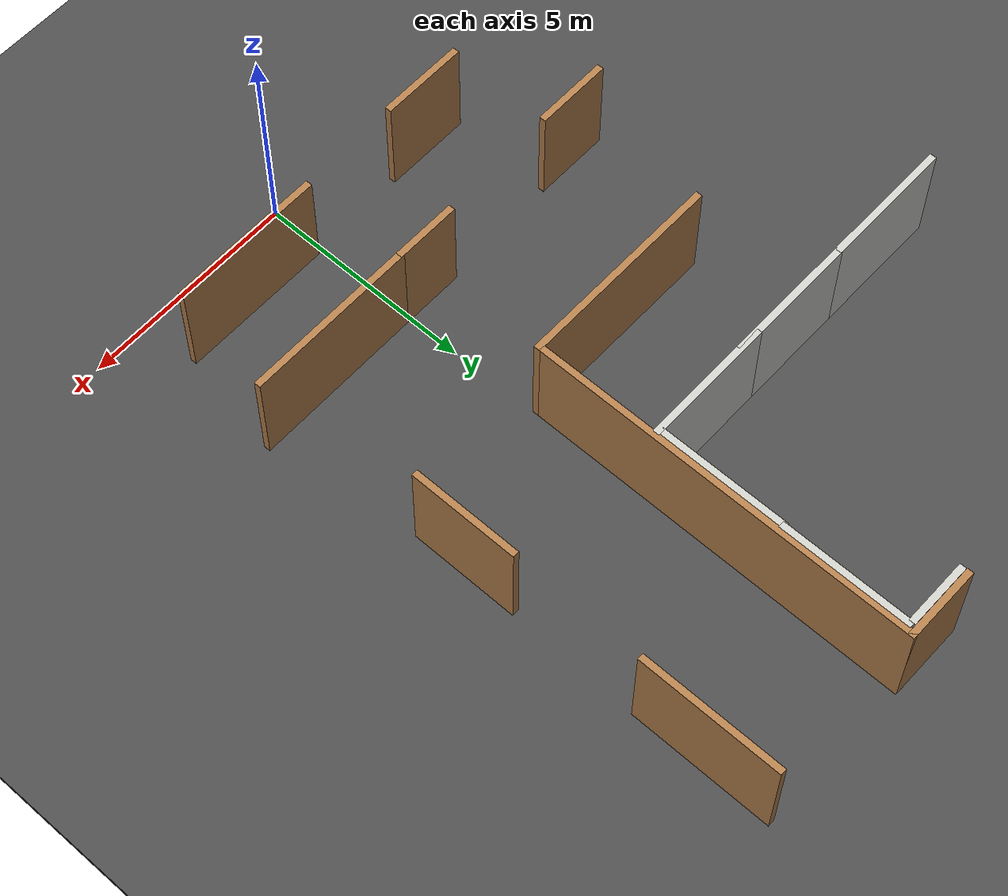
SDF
<sdf version="1.6">
 <world name="default">
  <model name="ground_plane">
   <static>1</static>
   <link name="link">
    <collision name="collision">
     <geometry><plane><normal>0 0 1</normal><size>100 100</size></plane></geometry>
     <surface><friction><ode><mu>100</mu><mu2>50</mu2></ode></friction></surface>
    </collision>
    <visual name="visual">
     <cast_shadows>0</cast_shadows>
     <geometry><plane><normal>0 0 1</normal><size>100 100</size></plane></geometry>
     <material>
      <script><uri>file://media/materials/scripts/gazebo.material</uri><name>Gazebo/Grey</name></script>
     </material>
    </visual>
   </link>
  </model>
  <model name="asphalt_plane">
   <static>1</static>
   <link name="link">
    <collision name="collision"><geometry><box><size>100 100 0.1</size></box></geometry></collision>
    <visual name="visual">
     <cast_shadows>0</cast_shadows>
     <geometry><box><size>100 100 0.1</size></box></geometry>
     <material>
      <script>
       <uri>model://asphalt_plane/materials/scripts</uri>
       <uri>model://asphalt_plane/materials/textures</uri>
       <name>vrc/asphalt</name>
      </script>
     </material>
    </visual>
   </link>
  </model>
  <model name="Hard_wall_wall_1">
   <pose>-0.231026 14.3447 0 0 -0 0</pose>
   <link name="Wall_0">
    <collision name="Wall_0_Collision">
     <geometry><box><size>3 0.15 2.5</size></box></geometry>
     <pose>0 0 1.25 0 -0 0</pose>
    </collision>
    <visual name="Wall_0_Visual">
     <pose>0 0 1.25 0 -0 0</pose>
     <geometry><box><size>3 0.15 2.5</size></box></geometry>
     <material>
      <script><uri>file://media/materials/scripts/gazebo.material</uri><name>Gazebo/CeilingTiled</name></script>
      <ambient>1 1 1 1</ambient>
     </material>
     <meta><layer>0</layer></meta>
    </visual>
    <pose>0 0 0 0 -0 1.5708</pose>
   </link>
   <static>1</static>
  </model>
  <model name="Hard_wall_wall_2">
   <pose>-0.252871 11.4504 0 0 -0 0</pose>
   <link name="Wall_0">
    <collision name="Wall_0_Collision">
     <geometry><box><size>3 0.15 2.5</size></box></geometry>
     <pose>0 0 1.25 0 -0 0</pose>
    </collision>
    <visual name="Wall_0_Visual">
     <pose>0 0 1.25 0 -0 0</pose>
     <geometry><box><size>3 0.15 2.5</size></box></geometry>
     <material>
      <script><uri>file://media/materials/scripts/gazebo.material</uri><name>Gazebo/CeilingTiled</name></script>
      <ambient>1 1 1 1</ambient>
     </material>
     <meta><layer>0</layer></meta>
    </visual>
    <pose>0 0 0 0 -0 1.5708</pose>
   </link>
   <static>1</static>
  </model>
  <model name="Hard_wall_wall_6_clone_4">
   <pose>-1.64895 9.93911 0 0 -0 1.57079</pose>
   <link name="Wall_0">
    <collision name="Wall_0_Collision">
     <geometry><box><size>3 0.15 2.5</size></box></geometry>
     <pose>0 0 1.25 0 -0 0</pose>
    </collision>
    <visual name="Wall_0_Visual">
     <pose>0 0 1.25 0 -0 0</pose>
     <geometry><box><size>3 0.15 2.5</size></box></geometry>
     <material>
      <script><uri>file://media/materials/scripts/gazebo.material</uri><name>Gazebo/CeilingTiled</name></script>
      <ambient>1 1 1 1</ambient>
     </material>
     <meta><layer>0</layer></meta>
    </visual>
    <pose>0 0 0 0 -0 1.5708</pose>
   </link>
   <static>1</static>
  </model>
  <model name="Hard_wall_wall_6_clone_5">
   <pose>-4.08866 9.93655 0 0 -0 1.57079</pose>
   <link name="Wall_0">
    <collision name="Wall_0_Collision">
     <geometry><box><size>3 0.15 2.5</size></box></geometry>
     <pose>0 0 1.25 0 -0 0</pose>
    </collision>
    <visual name="Wall_0_Visual">
     <pose>0 0 1.25 0 -0 0</pose>
     <geometry><box><size>3 0.15 2.5</size></box></geometry>
     <material>
      <script><uri>file://media/materials/scripts/gazebo.material</uri><name>Gazebo/CeilingTiled</name></script>
      <ambient>1 1 1 1</ambient>
     </material>
     <meta><layer>0</layer></meta>
    </visual>
    <pose>0 0 0 0 -0 1.5708</pose>
   </link>
   <static>1</static>
  </model>
  <model name="Hard_wall_wall_6_clone_6">
   <pose>-7.05086 9.93464 0 0 -0 1.57079</pose>
   <link name="Wall_0">
    <collision name="Wall_0_Collision">
     <geometry><box><size>3 0.15 2.5</size></box></geometry>
     <pose>0 0 1.25 0 -0 0</pose>
    </collision>
    <visual name="Wall_0_Visual">
     <pose>0 0 1.25 0 -0 0</pose>
     <geometry><box><size>3 0.15 2.5</size></box></geometry>
     <material>
      <script><uri>file://media/materials/scripts/gazebo.material</uri><name>Gazebo/CeilingTiled</name></script>
      <ambient>1 1 1 1</ambient>
     </material>
     <meta><layer>0</layer></meta>
    </visual>
    <pose>0 0 0 0 -0 1.5708</pose>
   </link>
   <static>1</static>
  </model>
  <model name="Hard_wall_wall_6_clone_8">
   <pose>-1.01529 15.8 0 0 -0 1.57079</pose>
   <link name="Wall_0">
    <collision name="Wall_0_Collision">
     <geometry><box><size>1.5 0.15 2.5</size></box></geometry>
     <pose>0 0 1.25 0 -0 0</pose>
    </collision>
    <visual name="Wall_0_Visual">
     <pose>0 0 1.25 0 -0 0</pose>
     <geometry><box><size>1.5 0.15 2.5</size></box></geometry>
     <material>
      <script><uri>file://media/materials/scripts/gazebo.material</uri><name>Gazebo/CeilingTiled</name></script>
      <ambient>1 1 1 1</ambient>
     </material>
     <meta><layer>0</layer></meta>
    </visual>
    <pose>0 0 0 0 -0 1.5708</pose>
   </link>
   <static>1</static>
  </model>
  <model name="Soft_wall_v1_1">
   <pose>-14.3408 -3.86286 0 0 -0 0</pose>
   <link name="Wall_189">
    <collision name="Wall_189_Collision">
     <geometry><box><size>2.5 0.15 2.5</size></box></geometry>
     <pose>0 0 1.25 0 -0 0</pose>
    </collision>
    <visual name="Wall_189_Visual">
     <pose>0 0 1.25 0 -0 0</pose>
     <geometry><box><size>2.5 0.15 2.5</size></box></geometry>
     <material>
      <script><uri>file://media/materials/scripts/gazebo.material</uri><name>Gazebo/Wood</name></script>
      <ambient>1 1 1 1</ambient>
     </material>
     <meta><layer>0</layer></meta>
    </visual>
    <pose>17.7844 12.3173 0 0 -0 1.5708</pose>
   </link>
   <link name="Wall_192">
    <collision name="Wall_192_Collision">
     <geometry><box><size>3.25 0.15 2.5</size></box></geometry>
     <pose>0 0 1.25 0 -0 0</pose>
    </collision>
    <visual name="Wall_192_Visual">
     <pose>0 0 1.25 0 -0 0</pose>
     <geometry><box><size>3.25 0.15 2.5</size></box></geometry>
     <material>
      <script><uri>file://media/materials/scripts/gazebo.material</uri><name>Gazebo/Wood</name></script>
      <ambient>1 1 1 1</ambient>
     </material>
     <meta><layer>0</layer></meta>
    </visual>
    <pose>17.8055 18.1447 0 0 0 -1.5708</pose>
   </link>
   <link name="Wall_196">
    <collision name="Wall_196_Collision">
     <geometry><box><size>1.75 0.15 2.5</size></box></geometry>
     <pose>0 0 1.25 0 -0 0</pose>
    </collision>
    <visual name="Wall_196_Visual">
     <pose>0 0 1.25 0 -0 0</pose>
     <geometry><box><size>1.75 0.15 2.5</size></box></geometry>
     <material>
      <script><uri>file://media/materials/scripts/gazebo.material</uri><name>Gazebo/Wood</name></script>
      <ambient>1 1 1 1</ambient>
     </material>
     <meta><layer>0</layer></meta>
    </visual>
    <pose>13.4371 19.8178 0 0 -0 0</pose>
   </link>
   <link name="Wall_197">
    <collision name="Wall_197_Collision">
     <geometry><box><size>9 0.15 2.5</size></box></geometry>
     <pose>0 0 1.25 0 -0 0</pose>
    </collision>
    <visual name="Wall_197_Visual">
     <pose>0 0 1.25 0 -0 0</pose>
     <geometry><box><size>9 0.15 2.5</size></box></geometry>
     <material>
      <script><uri>file://media/materials/scripts/gazebo.material</uri><name>Gazebo/Wood</name></script>
      <ambient>1 1 1 1</ambient>
     </material>
     <meta><layer>0</layer></meta>
    </visual>
    <pose>14.2371 15.3928 0 0 0 -1.5708</pose>
   </link>
   <link name="Wall_198">
    <collision name="Wall_198_Collision">
     <geometry><box><size>4.75 0.15 2.5</size></box></geometry>
     <pose>0 0 1.25 0 -0 0</pose>
    </collision>
    <visual name="Wall_198_Visual">
     <pose>0 0 1.25 0 -0 0</pose>
     <geometry><box><size>4.75 0.15 2.5</size></box></geometry>
     <material>
      <script><uri>file://media/materials/scripts/gazebo.material</uri><name>Gazebo/Wood</name></script>
      <ambient>1 1 1 1</ambient>
     </material>
     <meta><layer>0</layer></meta>
    </visual>
    <pose>11.9371 10.9678 0 0 -0 3.14159</pose>
   </link>
   <link name="Wall_218">
    <collision name="Wall_218_Collision">
     <geometry><box><size>4.02628 0.15 2.5</size></box></geometry>
     <pose>0 0 1.25 0 -0 0</pose>
    </collision>
    <visual name="Wall_218_Visual">
     <pose>0 0 1.25 0 -0 0</pose>
     <geometry><box><size>4.02628 0.15 2.5</size></box></geometry>
     <material>
      <script><uri>file://media/materials/scripts/gazebo.material</uri><name>Gazebo/Wood</name></script>
      <ambient>1 1 1 1</ambient>
     </material>
     <meta><layer>0</layer></meta>
    </visual>
    <pose>16.3894 7.62089 0 0 0 -3.13801</pose>
   </link>
   <link name="Wall_225">
    <collision name="Wall_225_Collision">
     <geometry><box><size>3.5 0.15 2.5</size></box></geometry>
     <pose>0 0 1.25 0 -0 0</pose>
    </collision>
    <visual name="Wall_225_Visual">
     <pose>0 0 1.25 0 -0 0</pose>
     <geometry><box><size>3.5 0.15 2.5</size></box></geometry>
     <material>
      <script><uri>file://media/materials/scripts/gazebo.material</uri><name>Gazebo/Wood</name></script>
      <ambient>1 1 1 1</ambient>
     </material>
     <meta><layer>0</layer></meta>
    </visual>
    <pose>16.2246 5.15959 0 0 -0 0</pose>
   </link>
   <link name="Wall_315">
    <collision name="Wall_315_Collision">
     <geometry><box><size>1.75 0.15 2.5</size></box></geometry>
     <pose>0 0 1.25 0 -0 0</pose>
    </collision>
    <visual name="Wall_315_Visual">
     <pose>0 0 1.25 0 -0 0</pose>
     <geometry><box><size>1.75 0.15 2.5</size></box></geometry>
     <material>
      <script><uri>file://media/materials/scripts/gazebo.material</uri><name>Gazebo/Wood</name></script>
      <ambient>1 1 1 1</ambient>
     </material>
     <meta><layer>0</layer></meta>
    </visual>
    <pose>9.4019 7.51935 0 0 -0 3.14159</pose>
   </link>
   <link name="Wall_317">
    <collision name="Wall_317_Collision">
     <geometry><box><size>1.5 0.15 2.5</size></box></geometry>
     <pose>0 0 1.25 0 -0 0</pose>
    </collision>
    <visual name="Wall_317_Visual">
     <pose>0 0 1.25 0 -0 0</pose>
     <geometry><box><size>1.5 0.15 2.5</size></box></geometry>
     <material>
      <script><uri>file://media/materials/scripts/gazebo.material</uri><name>Gazebo/Wood</name></script>
      <ambient>1 1 1 1</ambient>
     </material>
     <meta><layer>0</layer></meta>
    </visual>
    <pose>13.7763 7.61394 0 0 -0 3.14159</pose>
   </link>
   <link name="Wall_330">
    <collision name="Wall_330_Collision">
     <geometry><box><size>2 0.15 2.5</size></box></geometry>
     <pose>0 0 1.25 0 -0 0</pose>
    </collision>
    <visual name="Wall_330_Visual">
     <pose>0 0 1.25 0 -0 0</pose>
     <geometry><box><size>2 0.15 2.5</size></box></geometry>
     <material>
      <script><uri>file://media/materials/scripts/gazebo.material</uri><name>Gazebo/Wood</name></script>
      <ambient>1 1 1 1</ambient>
     </material>
     <meta><layer>0</layer></meta>
    </visual>
    <pose>11.159 5.08798 0 0 -0 0</pose>
   </link>
   <static>1</static>
  </model>
 </world>
</sdf>
